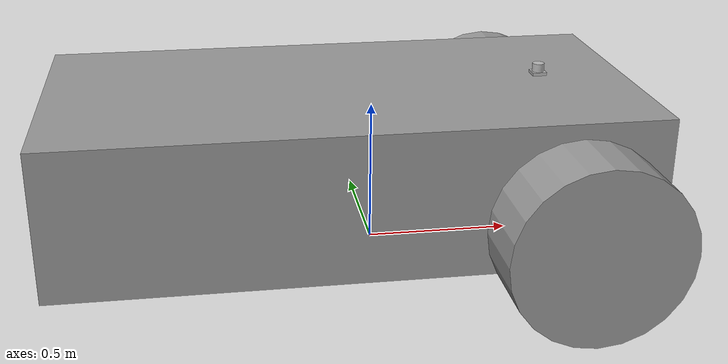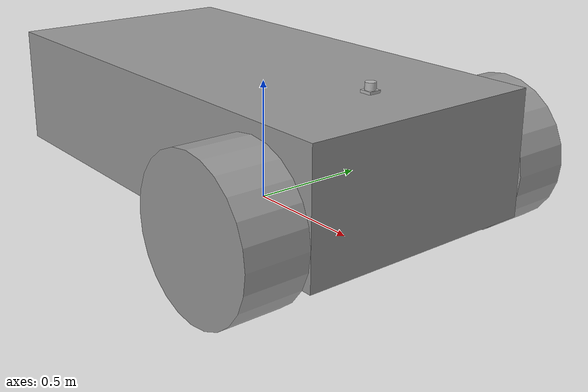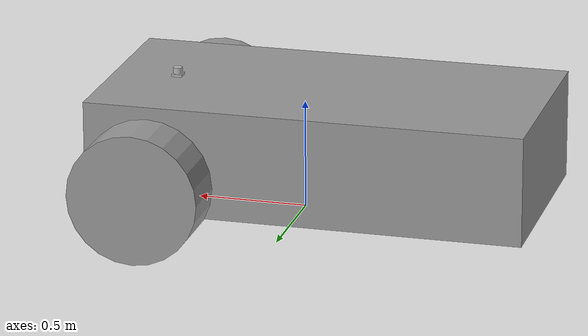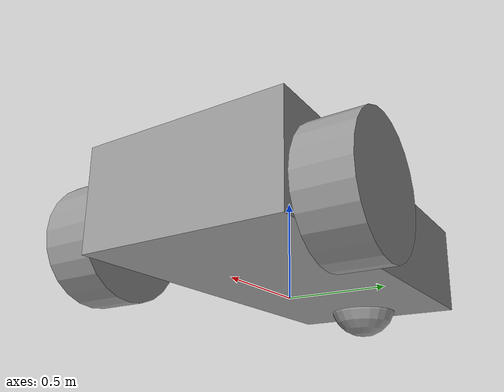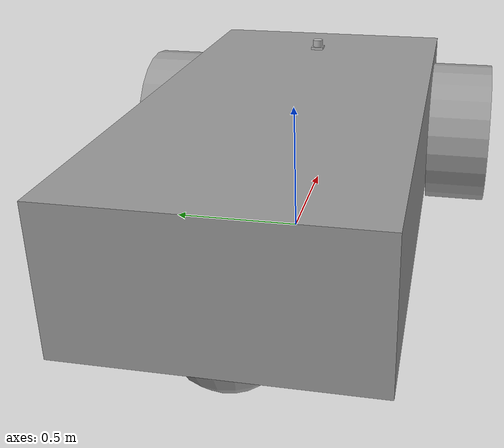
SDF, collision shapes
<?xml version='1.0'?>
<sdf version='1.7'>
  <model name='robotTask1'>
	<plugin name="diff_drive_controller" filename="libgazebo_ros_diff_drive.so">
        <ros>
            <namespace>/</namespace>
            <remapping>/cmd_vel:=cmd_vel</remapping>
        </ros>
        <left_joint>wheel_left_joint</left_joint>  <!-- Replace with your actual left wheel joint -->
        <right_joint>wheel_right_joint</right_joint>  <!-- Replace with your actual right wheel joint -->
        <wheel_separation>1</wheel_separation>  <!-- Adjust based on your robot's wheel spacing -->
        <wheel_radius>0.3</wheel_radius>  <!-- Adjust based on your wheel size -->
        <update_rate>50</update_rate>
    </plugin>
    <link name='link_0'>
      <inertial>
        <mass>0.721832</mass>
        <inertia>
          <ixx>0.066948</ixx>
          <ixy>0</ixy>
          <ixz>0</ixz>
          <iyy>0.284164</iyy>
          <iyz>0</iyz>
          <izz>0.337521</izz>
        </inertia>
        <pose>0 0 0 0 -0 0</pose>
      </inertial>
      <pose>-0.108144 0.000158 0.32895 0 -0 0</pose>
      <gravity>1</gravity>
      <self_collide>0</self_collide>
      <kinematic>0</kinematic>
      <enable_wind>0</enable_wind>
      <visual name='visual'>
        <pose>0 0 0 0 -0 0</pose>
        <geometry>
          <box>
            <size>2 1 0.5</size>
          </box>
        </geometry>
        <material>
          <lighting>1</lighting>
          <script>
            <uri>file://media/materials/scripts/gazebo.material</uri>
            <name>Gazebo/Grey</name>
          </script>
          <shader type='pixel'>
            <normal_map>__default__</normal_map>
          </shader>
          <ambient>0.3 0.3 0.3 1</ambient>
          <diffuse>0.7 0.7 0.7 1</diffuse>
          <specular>0.01 0.01 0.01 1</specular>
          <emissive>0 0 0 1</emissive>
        </material>
        <transparency>0</transparency>
        <cast_shadows>1</cast_shadows>
      </visual>
      <collision name='collision'>
        <laser_retro>0</laser_retro>
        <max_contacts>10</max_contacts>
        <pose>0 0 0 0 -0 0</pose>
        <geometry>
          <box>
            <size>2 1 0.5</size>
          </box>
        </geometry>
        <surface>
          <friction>
            <ode>
              <mu>1</mu>
              <mu2>1</mu2>
              <fdir1>0 0 0</fdir1>
              <slip1>0</slip1>
              <slip2>0</slip2>
            </ode>
            <torsional>
              <coefficient>1</coefficient>
              <patch_radius>0</patch_radius>
              <surface_radius>0</surface_radius>
              <use_patch_radius>1</use_patch_radius>
              <ode>
                <slip>0</slip>
              </ode>
            </torsional>
          </friction>
          <bounce>
            <restitution_coefficient>0</restitution_coefficient>
            <threshold>1e+06</threshold>
          </bounce>
          <contact>
            <collide_without_contact>0</collide_without_contact>
            <collide_without_contact_bitmask>1</collide_without_contact_bitmask>
            <collide_bitmask>1</collide_bitmask>
            <ode>
              <soft_cfm>0</soft_cfm>
              <soft_erp>0.2</soft_erp>
              <kp>1e+13</kp>
              <kd>1</kd>
              <max_vel>0.01</max_vel>
              <min_depth>0</min_depth>
            </ode>
            <bullet>
              <split_impulse>1</split_impulse>
              <split_impulse_penetration_threshold>-0.01</split_impulse_penetration_threshold>
              <soft_cfm>0</soft_cfm>
              <soft_erp>0.2</soft_erp>
              <kp>1e+13</kp>
              <kd>1</kd>
            </bullet>
          </contact>
        </surface>
      </collision>
    </link>
    <link name='link_1'>
      <inertial>
        <mass>1</mass>
        <inertia>
          <ixx>0.145833</ixx>
          <ixy>0</ixy>
          <ixz>0</ixz>
          <iyy>0.145833</iyy>
          <iyz>0</iyz>
          <izz>0.125</izz>
        </inertia>
        <pose>0 0 0 0 -0 0</pose>
      </inertial>
      <pose>0.591856 0.640187 0.22895 1.5707 -0 0</pose>
      <gravity>1</gravity>
      <self_collide>0</self_collide>
      <kinematic>0</kinematic>
      <enable_wind>0</enable_wind>
      <visual name='visual'>
        <pose>0 0 0 0 -0 0</pose>
        <geometry>
          <cylinder>
            <radius>0.3</radius>
            <length>0.25</length>
          </cylinder>
        </geometry>
        <material>
          <lighting>1</lighting>
          <script>
            <uri>file://media/materials/scripts/gazebo.material</uri>
            <name>Gazebo/Grey</name>
          </script>
          <shader type='pixel'>
            <normal_map>__default__</normal_map>
          </shader>
          <ambient>0.3 0.3 0.3 1</ambient>
          <diffuse>0.7 0.7 0.7 1</diffuse>
          <specular>0.01 0.01 0.01 1</specular>
          <emissive>0 0 0 1</emissive>
        </material>
        <transparency>0</transparency>
        <cast_shadows>1</cast_shadows>
      </visual>
      <collision name='collision'>
        <laser_retro>0</laser_retro>
        <max_contacts>10</max_contacts>
        <pose>0 0 0 0 -0 0</pose>
        <geometry>
          <cylinder>
            <radius>0.3</radius>
            <length>0.25</length>
          </cylinder>
        </geometry>
        <surface>
          <friction>
            <ode>
              <mu>1</mu>
              <mu2>1</mu2>
              <fdir1>0 0 0</fdir1>
              <slip1>0</slip1>
              <slip2>0</slip2>
            </ode>
            <torsional>
              <coefficient>1</coefficient>
              <patch_radius>0</patch_radius>
              <surface_radius>0</surface_radius>
              <use_patch_radius>1</use_patch_radius>
              <ode>
                <slip>0</slip>
              </ode>
            </torsional>
          </friction>
          <bounce>
            <restitution_coefficient>0</restitution_coefficient>
            <threshold>1e+06</threshold>
          </bounce>
          <contact>
            <collide_without_contact>0</collide_without_contact>
            <collide_without_contact_bitmask>1</collide_without_contact_bitmask>
            <collide_bitmask>1</collide_bitmask>
            <ode>
              <soft_cfm>0</soft_cfm>
              <soft_erp>0.2</soft_erp>
              <kp>1e+13</kp>
              <kd>1</kd>
              <max_vel>0.01</max_vel>
              <min_depth>0</min_depth>
            </ode>
            <bullet>
              <split_impulse>1</split_impulse>
              <split_impulse_penetration_threshold>-0.01</split_impulse_penetration_threshold>
              <soft_cfm>0</soft_cfm>
              <soft_erp>0.2</soft_erp>
              <kp>1e+13</kp>
              <kd>1</kd>
            </bullet>
          </contact>
        </surface>
      </collision>
    </link>
    <link name='link_1_clone'>
      <inertial>
        <mass>1</mass>
        <inertia>
          <ixx>0.145833</ixx>
          <ixy>0</ixy>
          <ixz>0</ixz>
          <iyy>0.145833</iyy>
          <iyz>0</iyz>
          <izz>0.125</izz>
        </inertia>
        <pose>0 0 0 0 -0 0</pose>
      </inertial>
      <pose>0.591856 -0.624871 0.22895 1.5707 -0 0</pose>
      <gravity>1</gravity>
      <self_collide>0</self_collide>
      <kinematic>0</kinematic>
      <enable_wind>0</enable_wind>
      <visual name='visual'>
        <pose>0 0 0 0 -0 0</pose>
        <geometry>
          <cylinder>
            <radius>0.3</radius>
            <length>0.25</length>
          </cylinder>
        </geometry>
        <material>
          <lighting>1</lighting>
          <script>
            <uri>file://media/materials/scripts/gazebo.material</uri>
            <name>Gazebo/Grey</name>
          </script>
          <shader type='pixel'>
            <normal_map>__default__</normal_map>
          </shader>
          <ambient>0.3 0.3 0.3 1</ambient>
          <diffuse>0.7 0.7 0.7 1</diffuse>
          <specular>0.01 0.01 0.01 1</specular>
          <emissive>0 0 0 1</emissive>
        </material>
        <transparency>0</transparency>
        <cast_shadows>1</cast_shadows>
      </visual>
      <collision name='collision'>
        <laser_retro>0</laser_retro>
        <max_contacts>10</max_contacts>
        <pose>0 0 0 0 -0 0</pose>
        <geometry>
          <cylinder>
            <radius>0.3</radius>
            <length>0.25</length>
          </cylinder>
        </geometry>
        <surface>
          <friction>
            <ode>
              <mu>1</mu>
              <mu2>1</mu2>
              <fdir1>0 0 0</fdir1>
              <slip1>0</slip1>
              <slip2>0</slip2>
            </ode>
            <torsional>
              <coefficient>1</coefficient>
              <patch_radius>0</patch_radius>
              <surface_radius>0</surface_radius>
              <use_patch_radius>1</use_patch_radius>
              <ode>
                <slip>0</slip>
              </ode>
            </torsional>
          </friction>
          <bounce>
            <restitution_coefficient>0</restitution_coefficient>
            <threshold>1e+06</threshold>
          </bounce>
          <contact>
            <collide_without_contact>0</collide_without_contact>
            <collide_without_contact_bitmask>1</collide_without_contact_bitmask>
            <collide_bitmask>1</collide_bitmask>
            <ode>
              <soft_cfm>0</soft_cfm>
              <soft_erp>0.2</soft_erp>
              <kp>1e+13</kp>
              <kd>1</kd>
              <max_vel>0.01</max_vel>
              <min_depth>0</min_depth>
            </ode>
            <bullet>
              <split_impulse>1</split_impulse>
              <split_impulse_penetration_threshold>-0.01</split_impulse_penetration_threshold>
              <soft_cfm>0</soft_cfm>
              <soft_erp>0.2</soft_erp>
              <kp>1e+13</kp>
              <kd>1</kd>
            </bullet>
          </contact>
        </surface>
      </collision>
    </link>
    <link name='link_2'>
      <inertial>
        <mass>1</mass>
        <inertia>
          <ixx>0.1</ixx>
          <ixy>0</ixy>
          <ixz>0</ixz>
          <iyy>0.1</iyy>
          <iyz>0</iyz>
          <izz>0.1</izz>
        </inertia>
        <pose>0 0 0 0 -0 0</pose>
      </inertial>
      <pose>-0.908144 0.000158 0.12895 0 -0 0</pose>
      <gravity>1</gravity>
      <self_collide>0</self_collide>
      <kinematic>0</kinematic>
      <enable_wind>0</enable_wind>
      <visual name='visual'>
        <pose>0 0 0 0 -0 0</pose>
        <geometry>
          <sphere>
            <radius>0.2</radius>
          </sphere>
        </geometry>
        <material>
          <lighting>1</lighting>
          <script>
            <uri>file://media/materials/scripts/gazebo.material</uri>
            <name>Gazebo/Grey</name>
          </script>
          <shader type='pixel'>
            <normal_map>__default__</normal_map>
          </shader>
          <ambient>0.3 0.3 0.3 1</ambient>
          <diffuse>0.7 0.7 0.7 1</diffuse>
          <specular>0.01 0.01 0.01 1</specular>
          <emissive>0 0 0 1</emissive>
        </material>
        <transparency>0</transparency>
        <cast_shadows>1</cast_shadows>
      </visual>
      <collision name='collision'>
        <laser_retro>0</laser_retro>
        <max_contacts>10</max_contacts>
        <pose>0 0 0 0 -0 0</pose>
        <geometry>
          <sphere>
            <radius>0.2</radius>
          </sphere>
        </geometry>
        <surface>
          <friction>
            <ode>
              <mu>1</mu>
              <mu2>1</mu2>
              <fdir1>0 0 0</fdir1>
              <slip1>0</slip1>
              <slip2>0</slip2>
            </ode>
            <torsional>
              <coefficient>1</coefficient>
              <patch_radius>0</patch_radius>
              <surface_radius>0</surface_radius>
              <use_patch_radius>1</use_patch_radius>
              <ode>
                <slip>0</slip>
              </ode>
            </torsional>
          </friction>
          <bounce>
            <restitution_coefficient>0</restitution_coefficient>
            <threshold>1e+06</threshold>
          </bounce>
          <contact>
            <collide_without_contact>0</collide_without_contact>
            <collide_without_contact_bitmask>1</collide_without_contact_bitmask>
            <collide_bitmask>1</collide_bitmask>
            <ode>
              <soft_cfm>0</soft_cfm>
              <soft_erp>0.2</soft_erp>
              <kp>1e+13</kp>
              <kd>1</kd>
              <max_vel>0.01</max_vel>
              <min_depth>0</min_depth>
            </ode>
            <bullet>
              <split_impulse>1</split_impulse>
              <split_impulse_penetration_threshold>-0.01</split_impulse_penetration_threshold>
              <soft_cfm>0</soft_cfm>
              <soft_erp>0.2</soft_erp>
              <kp>1e+13</kp>
              <kd>1</kd>
            </bullet>
          </contact>
        </surface>
      </collision>
    </link>
    <joint name='wheel_left_joint' type='revolute'>
      <parent>link_0</parent>
      <child>link_1</child>
      <pose>0 0 0 0 -0 0</pose>
      <axis>
        <xyz>0 0 1</xyz>
        <limit>
          <lower>-1.79769e+308</lower>
          <upper>1.79769e+308</upper>
          <effort>-1</effort>
          <velocity>-1</velocity>
        </limit>
        <dynamics>
          <spring_reference>0</spring_reference>
          <spring_stiffness>0</spring_stiffness>
          <damping>0</damping>
          <friction>0</friction>
        </dynamics>
      </axis>
      <physics>
        <ode>
          <limit>
            <cfm>0</cfm>
            <erp>0.2</erp>
          </limit>
          <suspension>
            <cfm>0</cfm>
            <erp>0.2</erp>
          </suspension>
        </ode>
      </physics>
    </joint>
    <joint name='wheel_right_joint' type='revolute'>
      <parent>link_0</parent>
      <child>link_1_clone</child>
      <pose>0 0 0 0 -0 0</pose>
      <axis>
        <xyz>0 0 1</xyz>
        <limit>
          <lower>-1.79769e+308</lower>
          <upper>1.79769e+308</upper>
          <effort>-1</effort>
          <velocity>-1</velocity>
        </limit>
        <dynamics>
          <spring_reference>0</spring_reference>
          <spring_stiffness>0</spring_stiffness>
          <damping>0</damping>
        </dynamics>
      </axis>
      <physics>
        <ode>
          <limit>
            <cfm>0</cfm>
            <erp>0.2</erp>
          </limit>
          <suspension>
            <cfm>0</cfm>
            <erp>0.2</erp>
          </suspension>
        </ode>
      </physics>
    </joint>
    <joint name='link_0_JOINT_2' type='ball'>
      <parent>link_0</parent>
      <child>link_2</child>
      <pose>0 0 0 0 -0 0</pose>
      <physics>
        <ode>
          <limit>
            <cfm>0</cfm>
            <erp>0.2</erp>
          </limit>
          <suspension>
            <cfm>0</cfm>
            <erp>0.2</erp>
          </suspension>
        </ode>
      </physics>
    </joint>
    <joint name='link_0_JOINT_3' type='fixed'>
      <parent>link_0</parent>
      <child>depth_camera::link</child>
      <pose>0 0 0 0 -0 0</pose>
      <physics>
        <ode>
          <limit>
            <cfm>0</cfm>
            <erp>0.2</erp>
          </limit>
          <suspension>
            <cfm>0</cfm>
            <erp>0.2</erp>
          </suspension>
        </ode>
      </physics>
    </joint>
    <static>0</static>
    <allow_auto_disable>1</allow_auto_disable>
	<include>
	  <uri>model://hokuyo</uri>
	  <pose>0.595911 0.016584 0.584199 0 -0 0</pose> <!-- You can keep or adjust this -->
	</include>
	<joint name="hokuyo_joint" type="fixed">
	  <child>hokuyo::link</child>
	  <parent>link_0</parent> <!-- Changed from chassis to link_0 -->
	  <pose>0.595911 0.016584 0.584199 0 -0 0</pose> <!-- Matching depth camera pose -->
	</joint>
  </model>
</sdf>

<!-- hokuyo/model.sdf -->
<sdf version="1.5">
  <model name="hokuyo">
    <pose>0 0 0.035 0 0 0</pose>
    <link name="link">
      <inertial>
        <mass>0.1</mass>
      </inertial>
      <visual name="visual">
        <geometry>
          <mesh>
            <uri>model://../model_source/models/hokuyo/meshes/hokuyo.dae</uri>
          </mesh>
        </geometry>
      </visual>
      <collision name="collision-base">
        <pose>0 0 -0.0145 0 0 0</pose>
        <geometry>
          <box>
            <size>0.05 0.05 0.041</size>
          </box>
        </geometry>
      </collision>
      <collision name="collision-top">
        <pose>0 0 0.0205 0 0 0</pose>
        <geometry>
          <cylinder>
            <radius>0.021</radius>
            <length>0.029</length>
          </cylinder>
        </geometry>
      </collision>
      <sensor name="laser" type="ray">
        <pose>0.01 0 0.0175 0 -0 0</pose>
        <ray>
          <scan>
            <horizontal>
              <samples>640</samples>
              <resolution>1</resolution>
              <min_angle>-2.26889</min_angle>
              <max_angle>2.268899</max_angle>
            </horizontal>
          </scan>
          <range>
            <min>0.08</min>
            <max>10</max>
            <resolution>0.01</resolution>
          </range>
        </ray>
        <plugin name="laser" filename="libRayPlugin.so" />
        <always_on>1</always_on>
        <update_rate>30</update_rate>
        <visualize>true</visualize>
      </sensor>
    </link>
  </model>
</sdf>
